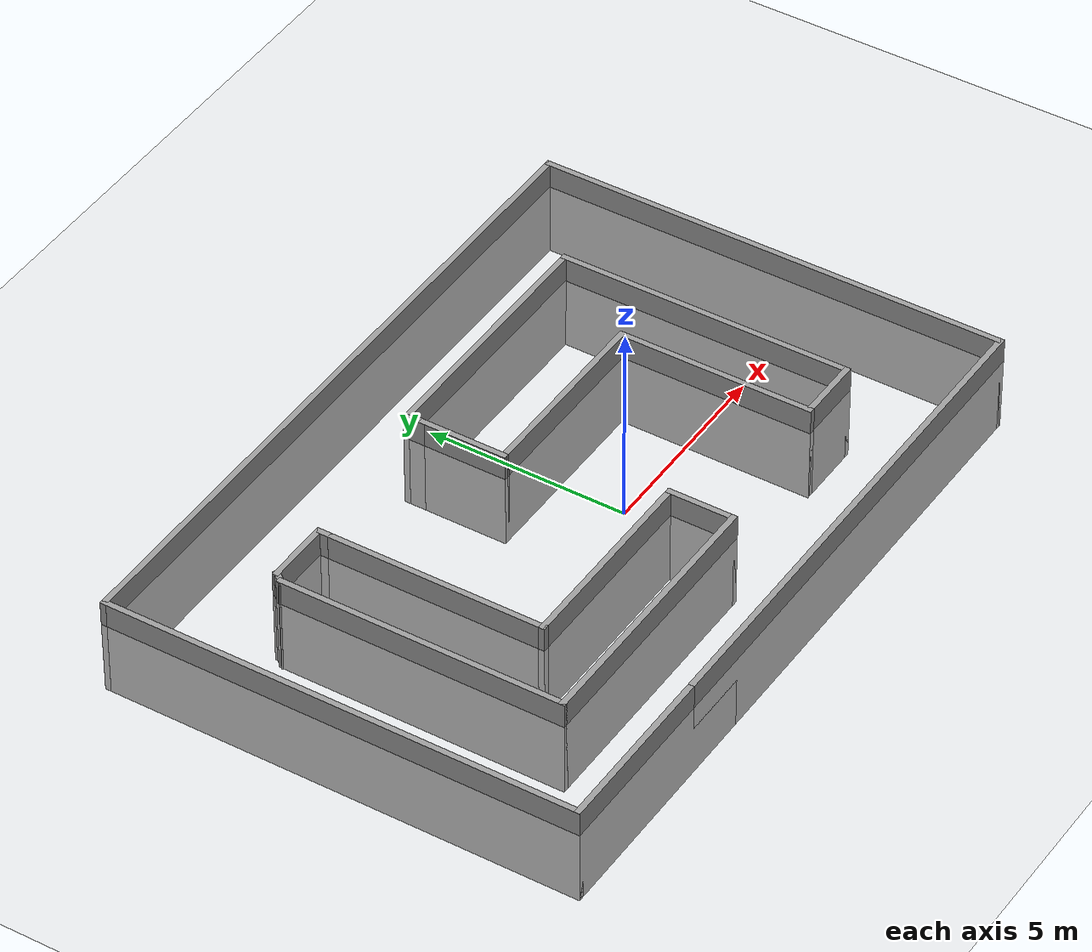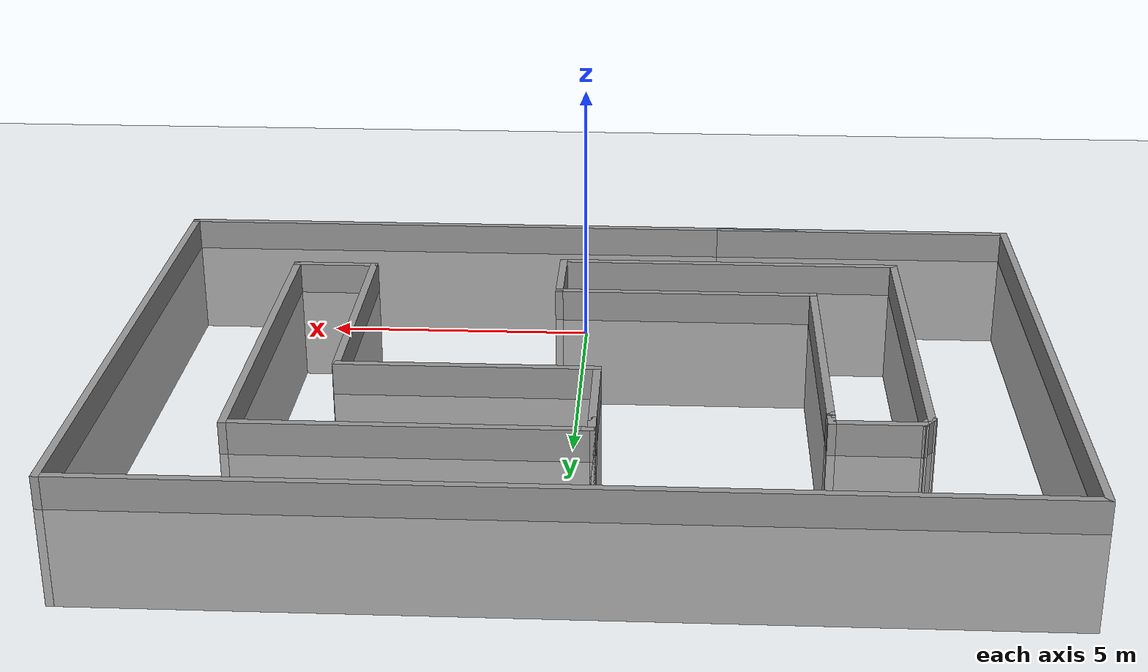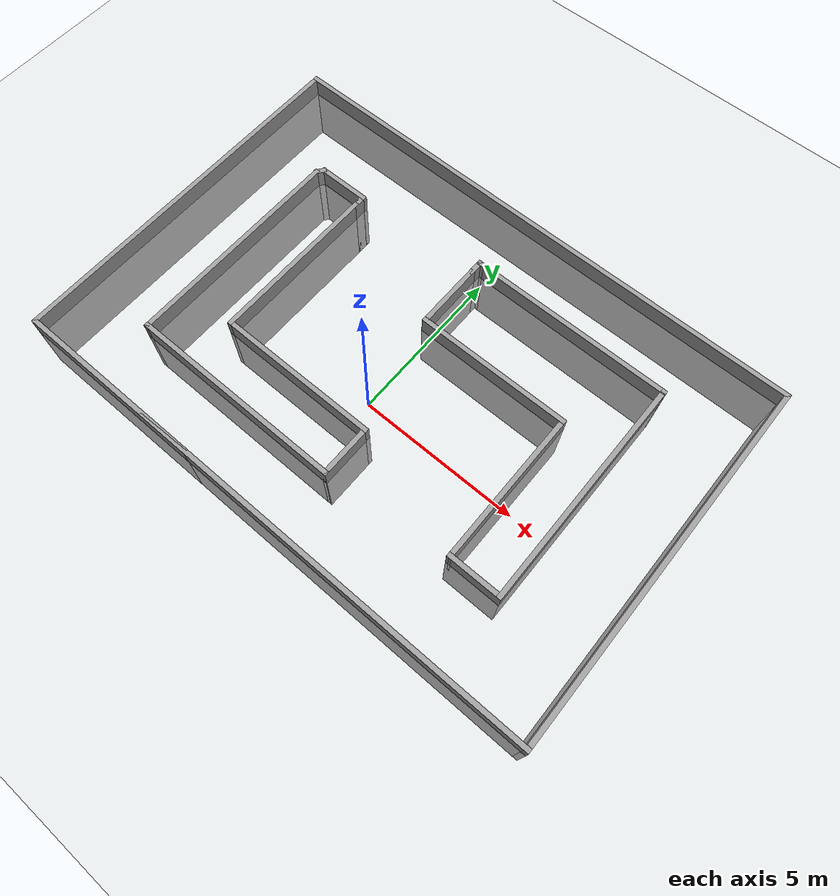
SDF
<sdf version="1.7">
 <world name="default">
  <light name="sun" type="directional">
   <pose>0 0 10 0 -0 0</pose>
   <diffuse>0.8 0.8 0.8 1</diffuse>
   <specular>0.2 0.2 0.2 1</specular>
   <attenuation>
    <range>1000</range>
    <constant>0.9</constant>
    <linear>0.01</linear>
    <quadratic>0.001</quadratic>
   </attenuation>
   <direction>-0.5 0.1 -0.9</direction>
   <spot><inner_angle>0</inner_angle><outer_angle>0</outer_angle><falloff>0</falloff></spot>
  </light>
  <model name="ground_plane">
   <static>1</static>
   <link name="link">
    <collision name="collision">
     <geometry><plane><normal>0 0 1</normal><size>100 100</size></plane></geometry>
     <surface>
      <contact><collide_bitmask>65535</collide_bitmask></contact>
      <friction><ode><mu>100</mu><mu2>50</mu2></ode></friction>
     </surface>
    </collision>
    <visual name="visual">
     <cast_shadows>0</cast_shadows>
     <geometry><plane><normal>0 0 1</normal><size>100 100</size></plane></geometry>
     <material>
      <script><uri>file://media/materials/scripts/gazebo.material</uri><name>Gazebo/Grey</name></script>
     </material>
    </visual>
   </link>
  </model>
  <gravity>0 0 -9.8</gravity>
  <magnetic_field>6e-06 2.3e-05 -4.2e-05</magnetic_field>
  <atmosphere type="adiabatic"/>
  <physics type="ode">
   <max_step_size>0.001</max_step_size>
   <real_time_factor>1</real_time_factor>
   <real_time_update_rate>1000</real_time_update_rate>
  </physics>
  <scene><ambient>0.4 0.4 0.4 1</ambient><background>0.7 0.7 0.7 1</background><shadows>1</shadows></scene>
  <spherical_coordinates>
   <surface_model>EARTH_WGS84</surface_model>
   <latitude_deg>0</latitude_deg>
   <longitude_deg>0</longitude_deg>
   <elevation>0</elevation>
   <heading_deg>0</heading_deg>
  </spherical_coordinates>
  <model name="two_Lshape">
   <pose>-0.020465 1.55126 -1.90203 0 -0 0</pose>
   <link name="Wall_22">
    <collision name="Wall_22_Collision">
     <geometry><box><size>13.25 0.15 2.5</size></box></geometry>
     <pose>0 0 1.25 0 -0 0</pose>
    </collision>
    <visual name="Wall_22_Visual">
     <pose>0 0 1.25 0 -0 0</pose>
     <geometry><box><size>13.25 0.15 2.5</size></box></geometry>
     <material>
      <script><uri>file://media/materials/scripts/gazebo.material</uri><name>Gazebo/Grey</name></script>
      <ambient>1 1 1 1</ambient>
     </material>
     <meta><layer>0</layer></meta>
    </visual>
    <pose>2.25 -5.925 0 0 -0 0</pose>
   </link>
   <link name="Wall_23">
    <collision name="Wall_23_Collision">
     <geometry><box><size>12 0.15 2.5</size></box></geometry>
     <pose>0 0 1.25 0 -0 0</pose>
    </collision>
    <visual name="Wall_23_Visual">
     <pose>0 0 1.25 0 -0 0</pose>
     <geometry><box><size>12 0.15 2.5</size></box></geometry>
     <material>
      <script><uri>file://media/materials/scripts/gazebo.material</uri><name>Gazebo/Grey</name></script>
      <ambient>1 1 1 1</ambient>
     </material>
     <meta><layer>0</layer></meta>
    </visual>
    <pose>8.8 -0 0 0 -0 1.5708</pose>
   </link>
   <link name="Wall_24">
    <collision name="Wall_24_Collision">
     <geometry><box><size>17.75 0.15 2.5</size></box></geometry>
     <pose>0 0 1.25 0 -0 0</pose>
    </collision>
    <visual name="Wall_24_Visual">
     <pose>0 0 1.25 0 -0 0</pose>
     <geometry><box><size>17.75 0.15 2.5</size></box></geometry>
     <material>
      <script><uri>file://media/materials/scripts/gazebo.material</uri><name>Gazebo/Grey</name></script>
      <ambient>1 1 1 1</ambient>
     </material>
     <meta><layer>0</layer></meta>
    </visual>
    <pose>0 5.925 0 0 -0 3.14159</pose>
   </link>
   <link name="Wall_25">
    <collision name="Wall_25_Collision">
     <geometry><box><size>12 0.15 2.5</size></box></geometry>
     <pose>0 0 1.25 0 -0 0</pose>
    </collision>
    <visual name="Wall_25_Visual">
     <pose>0 0 1.25 0 -0 0</pose>
     <geometry><box><size>12 0.15 2.5</size></box></geometry>
     <material>
      <script><uri>file://media/materials/scripts/gazebo.material</uri><name>Gazebo/Grey</name></script>
      <ambient>1 1 1 1</ambient>
     </material>
     <meta><layer>0</layer></meta>
    </visual>
    <pose>-8.8 -0 0 0 -0 -1.5708</pose>
   </link>
   <link name="Wall_26">
    <collision name="Wall_26_Collision">
     <geometry><box><size>6.25 0.15 2.5</size></box></geometry>
     <pose>0 0 1.25 0 -0 0</pose>
    </collision>
    <visual name="Wall_26_Visual">
     <pose>0 0 1.25 0 -0 0</pose>
     <geometry><box><size>6.25 0.15 2.5</size></box></geometry>
     <material>
      <script><uri>file://media/materials/scripts/gazebo.material</uri><name>Gazebo/Grey</name></script>
      <ambient>1 1 1 1</ambient>
     </material>
     <meta><layer>0</layer></meta>
    </visual>
    <pose>-5.75 -5.925 0 0 -0 0</pose>
   </link>
   <link name="Wall_28">
    <collision name="Wall_28_Collision">
     <geometry><box><size>7.25 0.15 2.5</size></box></geometry>
     <pose>0 0 1.25 0 -0 0</pose>
    </collision>
    <visual name="Wall_28_Visual">
     <pose>0 0 1.25 0 -0 0</pose>
     <geometry><box><size>7.25 0.15 2.5</size></box></geometry>
     <material>
      <script><uri>file://media/materials/scripts/gazebo.material</uri><name>Gazebo/Grey</name></script>
      <ambient>1 1 1 1</ambient>
     </material>
     <meta><layer>0</layer></meta>
    </visual>
    <pose>-6.24989 -0.395801 0 0 -0 -1.5708</pose>
   </link>
   <link name="Wall_29">
    <collision name="Wall_29_Collision">
     <geometry><box><size>7 0.15 2.5</size></box></geometry>
     <pose>0 0 1.25 0 -0 0</pose>
    </collision>
    <visual name="Wall_29_Visual">
     <pose>0 0 1.25 0 -0 0</pose>
     <geometry><box><size>7 0.15 2.5</size></box></geometry>
     <material>
      <script><uri>file://media/materials/scripts/gazebo.material</uri><name>Gazebo/Grey</name></script>
      <ambient>1 1 1 1</ambient>
     </material>
     <meta><layer>0</layer></meta>
    </visual>
    <pose>-2.82489 -3.9458 0 0 -0 0</pose>
   </link>
   <link name="Wall_30">
    <collision name="Wall_30_Collision">
     <geometry><box><size>1.75 0.15 2.5</size></box></geometry>
     <pose>0 0 1.25 0 -0 0</pose>
    </collision>
    <visual name="Wall_30_Visual">
     <pose>0 0 1.25 0 -0 0</pose>
     <geometry><box><size>1.75 0.15 2.5</size></box></geometry>
     <material>
      <script><uri>file://media/materials/scripts/gazebo.material</uri><name>Gazebo/Grey</name></script>
      <ambient>1 1 1 1</ambient>
     </material>
     <meta><layer>0</layer></meta>
    </visual>
    <pose>0.600111 -3.1458 0 0 -0 1.5708</pose>
   </link>
   <link name="Wall_31">
    <collision name="Wall_31_Collision">
     <geometry><box><size>5.25 0.15 2.5</size></box></geometry>
     <pose>0 0 1.25 0 -0 0</pose>
    </collision>
    <visual name="Wall_31_Visual">
     <pose>0 0 1.25 0 -0 0</pose>
     <geometry><box><size>5.25 0.15 2.5</size></box></geometry>
     <material>
      <script><uri>file://media/materials/scripts/gazebo.material</uri><name>Gazebo/Grey</name></script>
      <ambient>1 1 1 1</ambient>
     </material>
     <meta><layer>0</layer></meta>
    </visual>
    <pose>-1.94989 -2.3458 0 0 -0 3.14159</pose>
   </link>
   <link name="Wall_32">
    <collision name="Wall_32_Collision">
     <geometry><box><size>5.5 0.15 2.5</size></box></geometry>
     <pose>0 0 1.25 0 -0 0</pose>
    </collision>
    <visual name="Wall_32_Visual">
     <pose>0 0 1.25 0 -0 0</pose>
     <geometry><box><size>5.5 0.15 2.5</size></box></geometry>
     <material>
      <script><uri>file://media/materials/scripts/gazebo.material</uri><name>Gazebo/Grey</name></script>
      <ambient>1 1 1 1</ambient>
     </material>
     <meta><layer>0</layer></meta>
    </visual>
    <pose>-4.49989 0.329199 0 0 -0 1.5708</pose>
   </link>
   <link name="Wall_33">
    <collision name="Wall_33_Collision">
     <geometry><box><size>0.15 0.15 2.5</size></box></geometry>
     <pose>0 0 1.25 0 -0 0</pose>
    </collision>
    <visual name="Wall_33_Visual">
     <pose>0 0 1.25 0 -0 0</pose>
     <geometry><box><size>0.15 0.15 2.5</size></box></geometry>
     <material>
      <script><uri>file://media/materials/scripts/gazebo.material</uri><name>Gazebo/Grey</name></script>
      <ambient>1 1 1 1</ambient>
     </material>
     <meta><layer>0</layer></meta>
    </visual>
    <pose>-4.49989 3.0042 0 0 -0 0</pose>
   </link>
   <link name="Wall_34">
    <collision name="Wall_34_Collision">
     <geometry><box><size>0.25 0.15 2.5</size></box></geometry>
     <pose>0 0 1.25 0 -0 0</pose>
    </collision>
    <visual name="Wall_34_Visual">
     <pose>0 0 1.25 0 -0 0</pose>
     <geometry><box><size>0.25 0.15 2.5</size></box></geometry>
     <material>
      <script><uri>file://media/materials/scripts/gazebo.material</uri><name>Gazebo/Grey</name></script>
      <ambient>1 1 1 1</ambient>
     </material>
     <meta><layer>0</layer></meta>
    </visual>
    <pose>-4.49989 3.0542 0 0 -0 1.5708</pose>
   </link>
   <link name="Wall_37">
    <collision name="Wall_37_Collision">
     <geometry><box><size>2.25 0.15 2.5</size></box></geometry>
     <pose>0 0 1.25 0 -0 0</pose>
    </collision>
    <visual name="Wall_37_Visual">
     <pose>0 0 1.25 0 -0 0</pose>
     <geometry><box><size>2.25 0.15 2.5</size></box></geometry>
     <material>
      <script><uri>file://media/materials/scripts/gazebo.material</uri><name>Gazebo/Grey</name></script>
      <ambient>1 1 1 1</ambient>
     </material>
     <meta><layer>0</layer></meta>
    </visual>
    <pose>-0.318058 2.36387 0 0 -0 -1.5708</pose>
   </link>
   <link name="Wall_38">
    <collision name="Wall_38_Collision">
     <geometry><box><size>5 0.15 2.5</size></box></geometry>
     <pose>0 0 1.25 0 -0 0</pose>
    </collision>
    <visual name="Wall_38_Visual">
     <pose>0 0 1.25 0 -0 0</pose>
     <geometry><box><size>5 0.15 2.5</size></box></geometry>
     <material>
      <script><uri>file://media/materials/scripts/gazebo.material</uri><name>Gazebo/Grey</name></script>
      <ambient>1 1 1 1</ambient>
     </material>
     <meta><layer>0</layer></meta>
    </visual>
    <pose>2.10694 1.31387 0 0 -0 0</pose>
   </link>
   <link name="Wall_39">
    <collision name="Wall_39_Collision">
     <geometry><box><size>5 0.15 2.5</size></box></geometry>
     <pose>0 0 1.25 0 -0 0</pose>
    </collision>
    <visual name="Wall_39_Visual">
     <pose>0 0 1.25 0 -0 0</pose>
     <geometry><box><size>5 0.15 2.5</size></box></geometry>
     <material>
      <script><uri>file://media/materials/scripts/gazebo.material</uri><name>Gazebo/Grey</name></script>
      <ambient>1 1 1 1</ambient>
     </material>
     <meta><layer>0</layer></meta>
    </visual>
    <pose>4.53194 -1.11113 0 0 -0 -1.5708</pose>
   </link>
   <link name="Wall_40">
    <collision name="Wall_40_Collision">
     <geometry><box><size>1.75 0.15 2.5</size></box></geometry>
     <pose>0 0 1.25 0 -0 0</pose>
    </collision>
    <visual name="Wall_40_Visual">
     <pose>0 0 1.25 0 -0 0</pose>
     <geometry><box><size>1.75 0.15 2.5</size></box></geometry>
     <material>
      <script><uri>file://media/materials/scripts/gazebo.material</uri><name>Gazebo/Grey</name></script>
      <ambient>1 1 1 1</ambient>
     </material>
     <meta><layer>0</layer></meta>
    </visual>
    <pose>5.33194 -3.53613 0 0 -0 0</pose>
   </link>
   <link name="Wall_41">
    <collision name="Wall_41_Collision">
     <geometry><box><size>7.5 0.15 2.5</size></box></geometry>
     <pose>0 0 1.25 0 -0 0</pose>
    </collision>
    <visual name="Wall_41_Visual">
     <pose>0 0 1.25 0 -0 0</pose>
     <geometry><box><size>7.5 0.15 2.5</size></box></geometry>
     <material>
      <script><uri>file://media/materials/scripts/gazebo.material</uri><name>Gazebo/Grey</name></script>
      <ambient>1 1 1 1</ambient>
     </material>
     <meta><layer>0</layer></meta>
    </visual>
    <pose>6.13194 0.138872 0 0 -0 1.5708</pose>
   </link>
   <link name="Wall_42">
    <collision name="Wall_42_Collision">
     <geometry><box><size>6.5 0.15 2.5</size></box></geometry>
     <pose>0 0 1.25 0 -0 0</pose>
    </collision>
    <visual name="Wall_42_Visual">
     <pose>0 0 1.25 0 -0 0</pose>
     <geometry><box><size>6.5 0.15 2.5</size></box></geometry>
     <material>
      <script><uri>file://media/materials/scripts/gazebo.material</uri><name>Gazebo/Grey</name></script>
      <ambient>1 1 1 1</ambient>
     </material>
     <meta><layer>0</layer></meta>
    </visual>
    <pose>2.95694 3.81387 0 0 -0 3.14159</pose>
   </link>
   <link name="Wall_43">
    <collision name="Wall_43_Collision">
     <geometry><box><size>0.25 0.15 2.5</size></box></geometry>
     <pose>0 0 1.25 0 -0 0</pose>
    </collision>
    <visual name="Wall_43_Visual">
     <pose>0 0 1.25 0 -0 0</pose>
     <geometry><box><size>0.25 0.15 2.5</size></box></geometry>
     <material>
      <script><uri>file://media/materials/scripts/gazebo.material</uri><name>Gazebo/Grey</name></script>
      <ambient>1 1 1 1</ambient>
     </material>
     <meta><layer>0</layer></meta>
    </visual>
    <pose>-0.268058 3.81387 0 0 -0 3.14159</pose>
   </link>
   <link name="Wall_44">
    <collision name="Wall_44_Collision">
     <geometry><box><size>0.55 0.15 2.5</size></box></geometry>
     <pose>0 0 1.25 0 -0 0</pose>
    </collision>
    <visual name="Wall_44_Visual">
     <pose>0 0 1.25 0 -0 0</pose>
     <geometry><box><size>0.55 0.15 2.5</size></box></geometry>
     <material>
      <script><uri>file://media/materials/scripts/gazebo.material</uri><name>Gazebo/Grey</name></script>
      <ambient>1 1 1 1</ambient>
     </material>
     <meta><layer>0</layer></meta>
    </visual>
    <pose>-0.318058 3.61387 0 0 -0 -1.5708</pose>
   </link>
   <link name="Wall_46">
    <collision name="Wall_46_Collision">
     <geometry><box><size>0.5 0.15 2.5</size></box></geometry>
     <pose>0 0 1.25 0 -0 0</pose>
    </collision>
    <visual name="Wall_46_Visual">
     <pose>0 0 1.25 0 -0 0</pose>
     <geometry><box><size>0.5 0.15 2.5</size></box></geometry>
     <material>
      <script><uri>file://media/materials/scripts/gazebo.material</uri><name>Gazebo/Grey</name></script>
      <ambient>1 1 1 1</ambient>
     </material>
     <meta><layer>0</layer></meta>
    </visual>
    <pose>-4.49989 3.1792 0 0 -0 1.5708</pose>
   </link>
   <link name="Wall_47">
    <collision name="Wall_47_Collision">
     <geometry><box><size>1.75 0.15 2.5</size></box></geometry>
     <pose>0 0 1.25 0 -0 0</pose>
    </collision>
    <visual name="Wall_47_Visual">
     <pose>0 0 1.25 0 -0 0</pose>
     <geometry><box><size>1.75 0.15 2.5</size></box></geometry>
     <material>
      <script><uri>file://media/materials/scripts/gazebo.material</uri><name>Gazebo/Grey</name></script>
      <ambient>1 1 1 1</ambient>
     </material>
     <meta><layer>0</layer></meta>
    </visual>
    <pose>-5.29989 3.3542 0 0 -0 3.14159</pose>
   </link>
   <link name="Wall_48">
    <collision name="Wall_48_Collision">
     <geometry><box><size>0.4 0.15 2.5</size></box></geometry>
     <pose>0 0 1.25 0 -0 0</pose>
    </collision>
    <visual name="Wall_48_Visual">
     <pose>0 0 1.25 0 -0 0</pose>
     <geometry><box><size>0.4 0.15 2.5</size></box></geometry>
     <material>
      <script><uri>file://media/materials/scripts/gazebo.material</uri><name>Gazebo/Grey</name></script>
      <ambient>1 1 1 1</ambient>
     </material>
     <meta><layer>0</layer></meta>
    </visual>
    <pose>-6.17489 3.2542 0 0 -0 -2.2143</pose>
   </link>
   <static>1</static>
  </model>
 </world>
</sdf>
